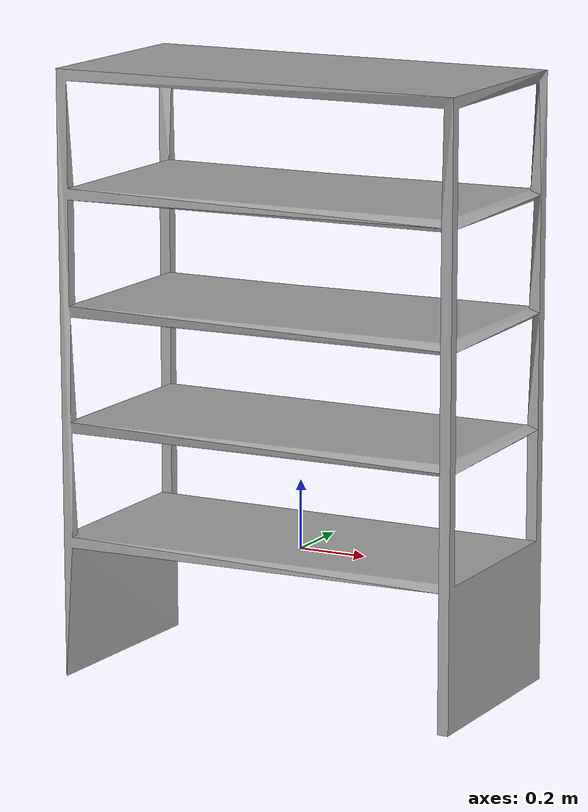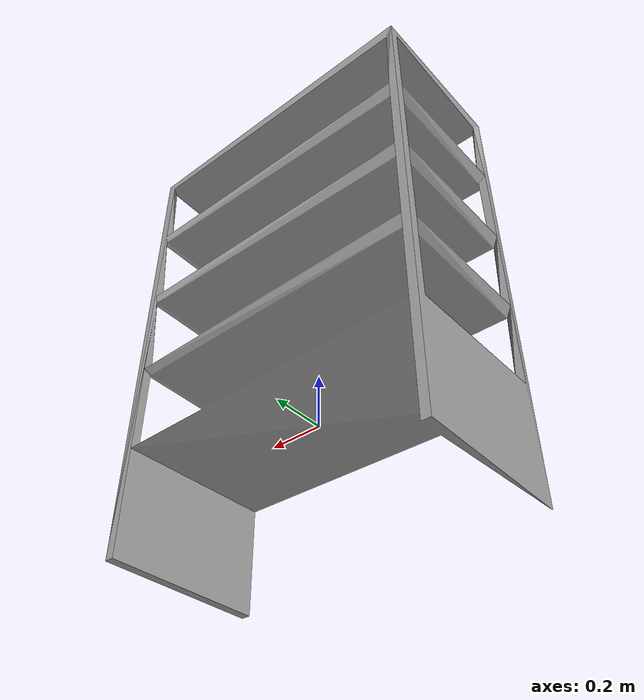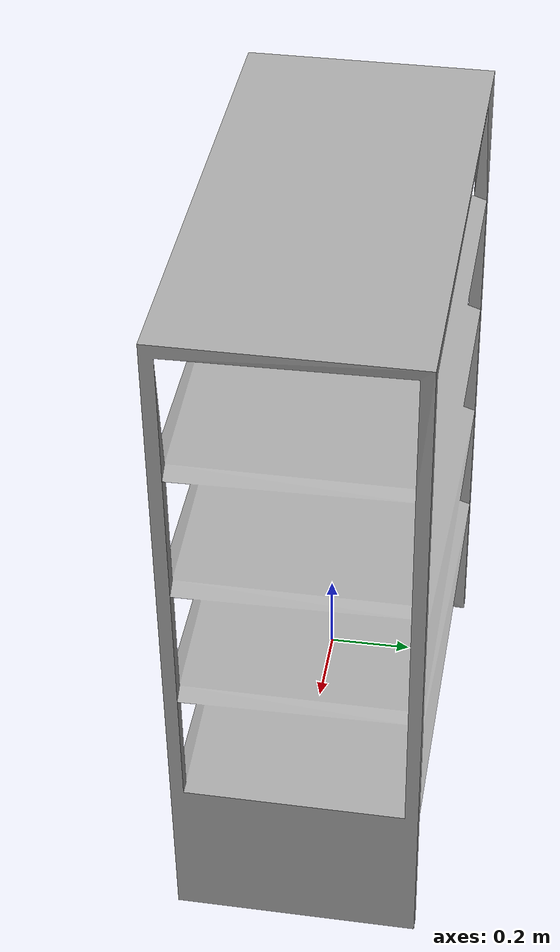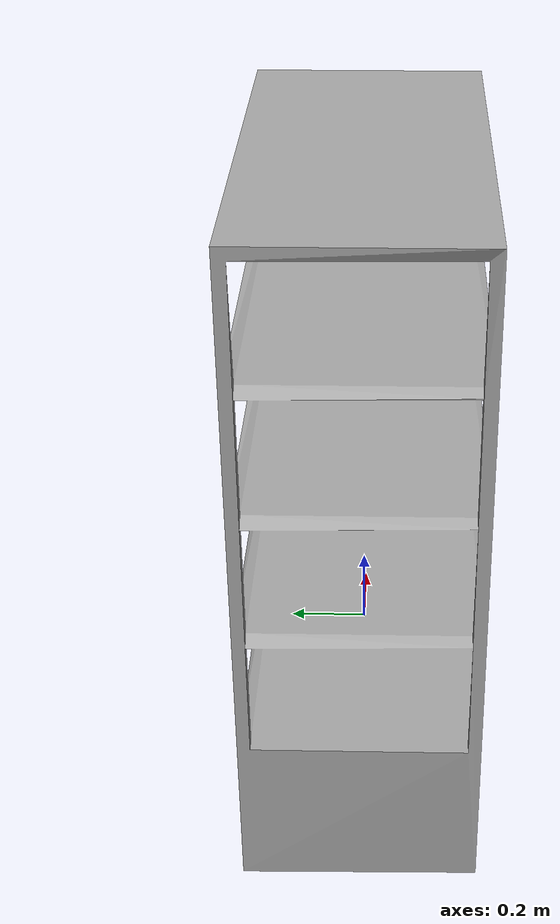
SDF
<?xml version="1.0" ?>
<!-- Generated using onshape-to-robot -->
<!-- Onshape https://cad.onshape.com/documents/e59a5119f90fbd6e9f1333a0/w/d0af061ee81795a88f344743/e/58bd54593187122834701847 -->
<sdf version="1.7">
  <model name="StorageRack">
    <!-- Link part_10 -->
    <link name="part_11">
      <inertial>
        <pose>-5.14099e-17 -1.40256e-16 0.656909 0 0 0</pose>
        <mass>2388.38</mass>
        <inertia>
          <ixx>627.823</ixx>
          <ixy>1.03728e-14</ixy>
          <ixz>-7.82377e-14</ixz>
          <iyy>868.528</iyy>
          <iyz>-1.52331e-13</iyz>
          <izz>392.919</izz>
        </inertia>
      </inertial>
      <pose>0 0 0 0 -0 0</pose>
      <!-- Part part_10 -->
      <visual name="part_11_visual_mesh_1">
        <pose relative_to="part_11">-1.11022e-16 -1.11022e-16 0 0 -0 0</pose>
        <geometry>
          <mesh>
            <uri>model://StorageRack/assets/part_11.stl</uri>
          </mesh>
        </geometry>
        <material>
          <ambient>0.647059 0.647059 0.647059 1</ambient>
          <diffuse>0.647059 0.647059 0.647059 1</diffuse>
          <specular>0.1 0.1 0.1 1</specular>
          <emissive>0 0 0 0</emissive>
        </material>
      </visual>
      <collision name="part_11_collision_mesh_2">
        <pose relative_to="part_11">-1.11022e-16 -1.11022e-16 0 0 -0 0</pose>
        <geometry>
          <mesh>
            <uri>model://StorageRack/assets/part_11.stl</uri>
          </mesh>
        </geometry>
      </collision>
    </link>
  </model>
</sdf>
